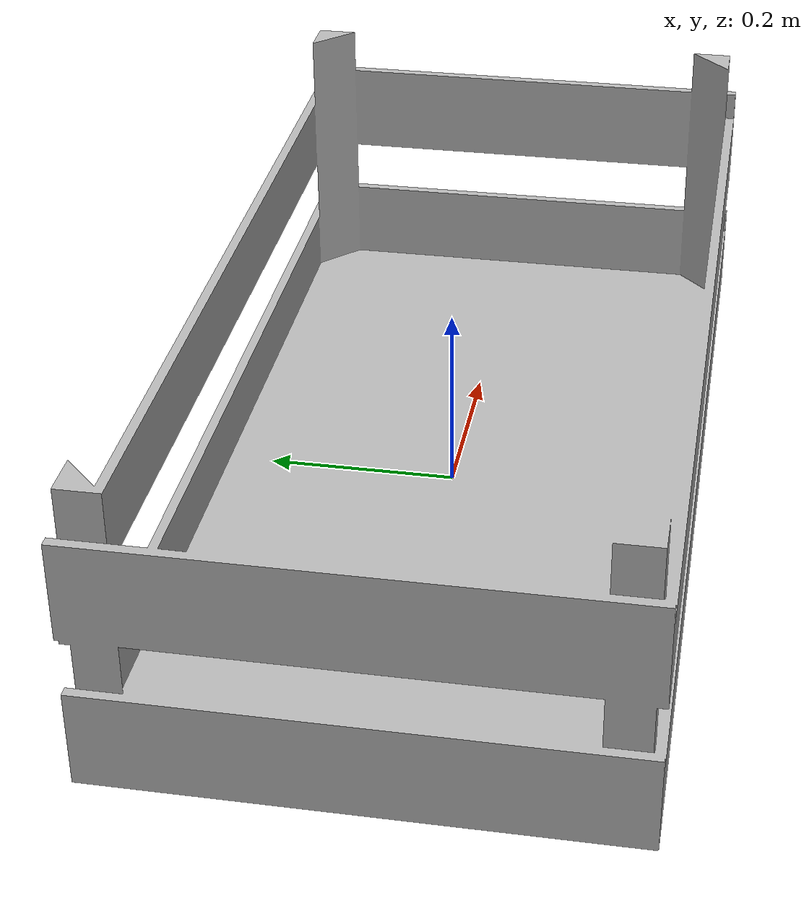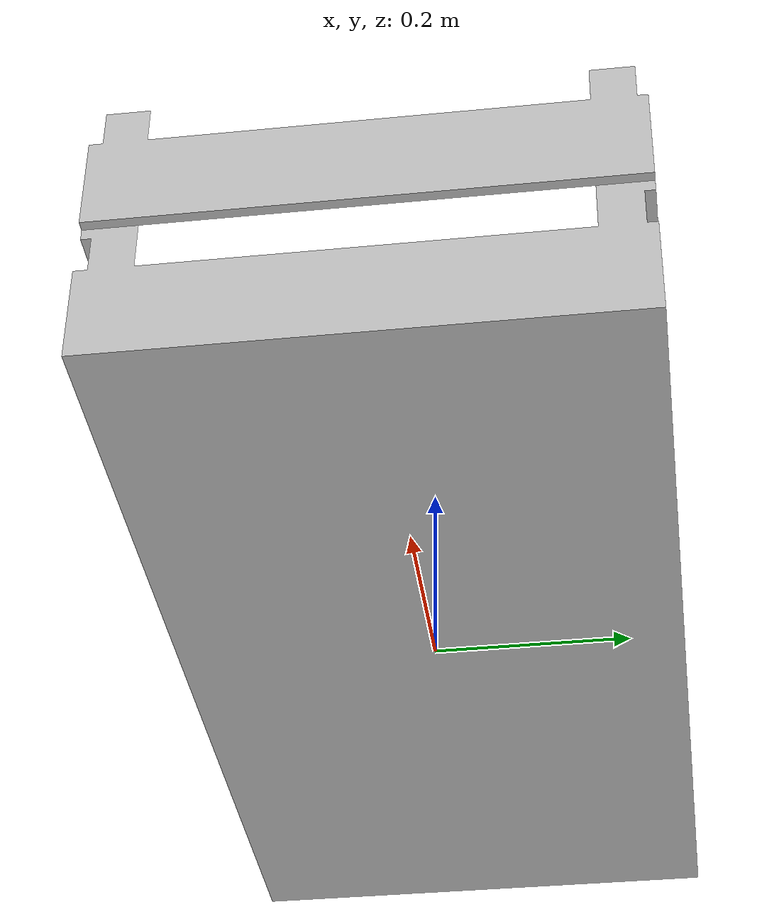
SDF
<?xml version="1.0" ?>
<sdf version="1.5">
  <model name="src_parcel">
    <static>true</static>
    <link name="chair_link">

      <visual name="chair_mesh">
        <cast_shadows>true</cast_shadows>
        <geometry>
            <mesh>
                <uri>model://src_parcel/meshes/model.dae</uri>
            </mesh>
        </geometry>
      </visual>
    </link>
  </model>
</sdf>
